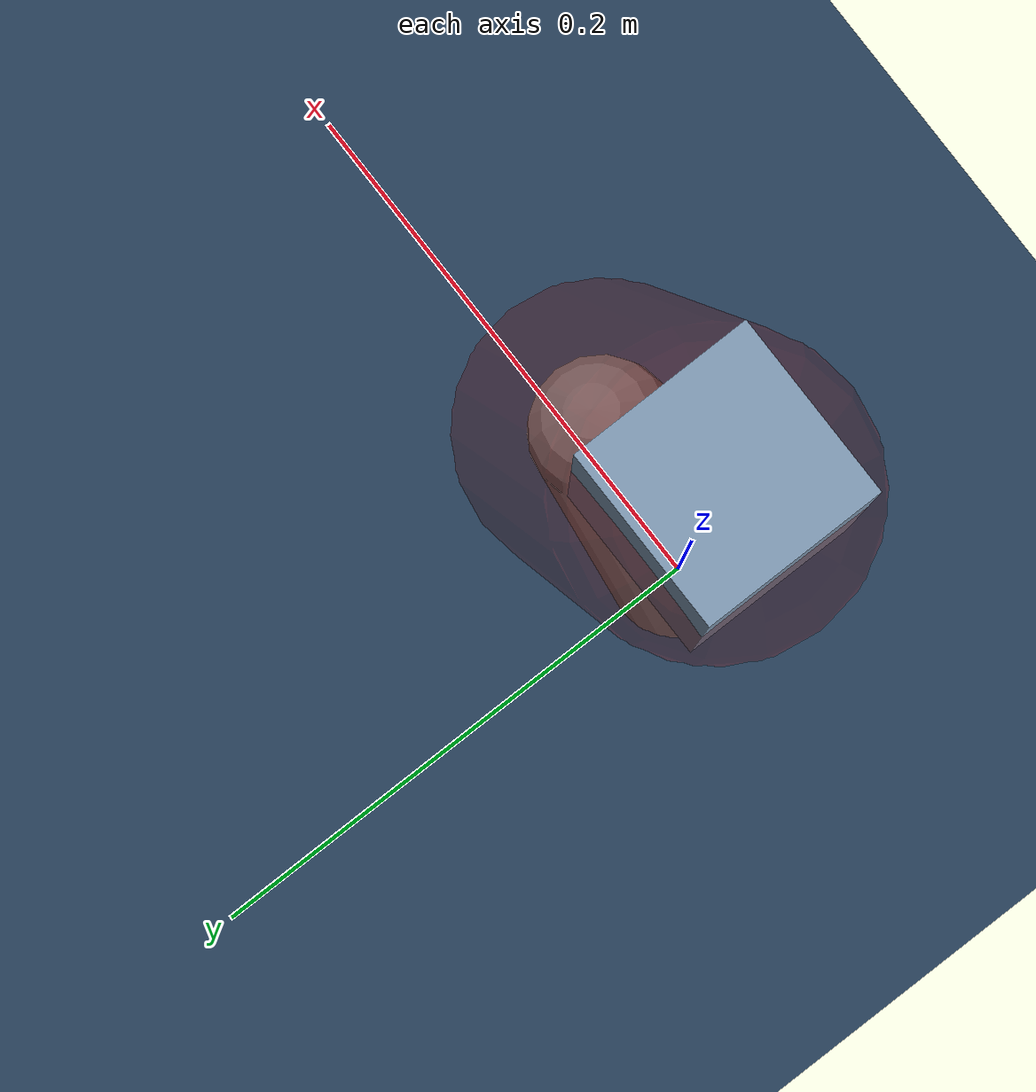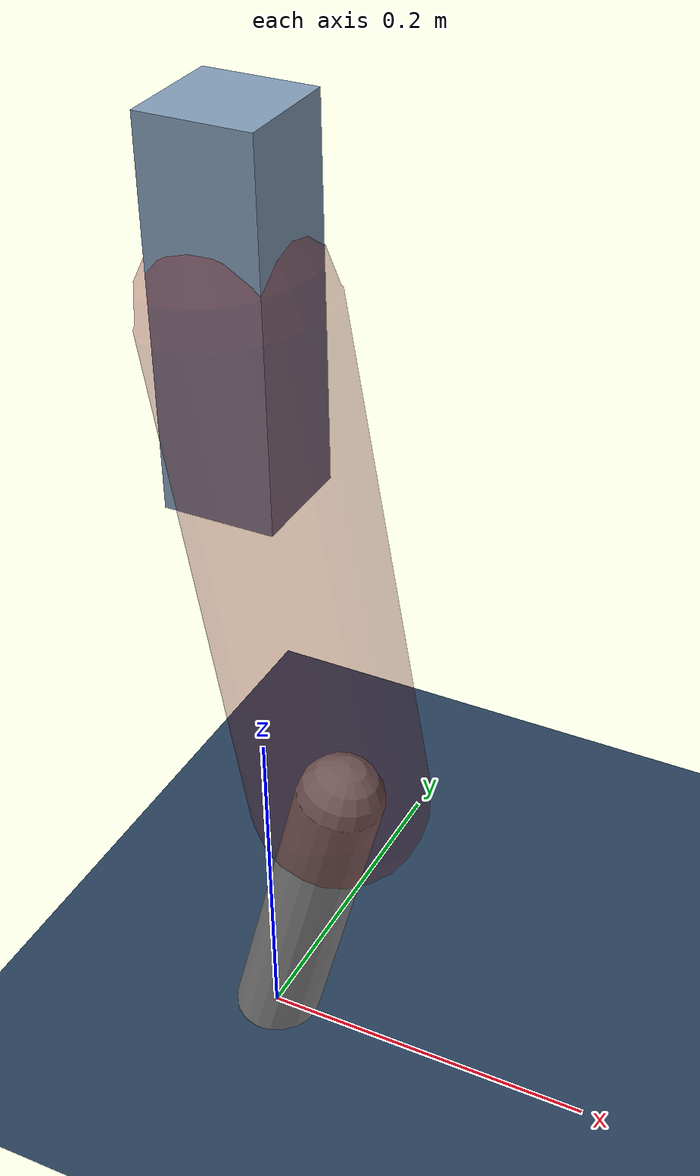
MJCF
<mujoco model="Hopper2D">
	<compiler inertiafromgeom="true" angle="radian" />
	<option timestep="0.001" integrator="implicit" cone="elliptic" solver="Newton" tolerance="1e-10" />

	<default>
		<geom contype="1" conaffinity="1" condim="3" friction="2 0.005 0.0001" solref="0.005 1" />
		<joint limited="true" damping="0.1" />
	</default>

	<asset>
		<texture name="skybox" type="skybox" builtin="gradient" rgb1=".4 .6 .8" rgb2="0 0 0" width="800" height="800" />
		<texture name="grid" type="2d" builtin="checker" rgb1=".1 .2 .3" rgb2=".2 .3 .4" width="300" height="300" mark="edge" markrgb=".2 .3 .4" />
		<material name="ground" texture="grid" texrepeat="1 1" texuniform="true" reflectance="0.1" />
		<material name="leg" rgba="0.5 0.6 0.7 1" />
	</asset>

	<worldbody>

		<geom name="floor" type="plane" size="5 5 0.25" material="ground" />

		<light directional="false" diffuse="0.8 0.8 0.8" specular="0.3 0.3 0.3" pos="0 0 2" dir="0 0 -1" />
		<light mode="targetbodycom" target="base" directional="false" diffuse="0.8 0.8 0.8" specular="0.3 0.3 0.3" pos="0 0 2" dir="0 0 -1" />

		<camera name="fixed" pos="0 -2 1" xyaxes="1 0 0 0 0 1" />
		<camera name="tracking" mode="trackcom" pos="0 -3 1" />

		<body name="root" pos="0 0 0.4648674138121097">
			<joint name="slide_x" type="slide" axis="1 0 0" range="-100 100" />
			<joint name="slide_z" type="slide" axis="0 0 1" range="0 10" />

			<body name="base" pos="0 0 0">
				<geom name="torso" type="box" size="0.03 0.03 0.1" mass="1.9849999999999999" material="leg" />

				<body name="link1" pos="0 0 0" euler="0 1.4048704246562254 0">
					<joint type="hinge" axis="0 -1 0" pos="0 0 0" name="hinge1" limited="true" range="-3.14 3.14" stiffness="0" damping="0.1" />
					<geom name="thigh" type="capsule" fromto="0 0 0 0.28677453727265634 0 0" size="0.05" rgba="0.5 0 0 0.3" mass="0.9531912506361722" />

					<body name="link2" pos="0.28677453727265634 0 0" euler="0 0.42048485624745874 0">
						<joint type="hinge" axis="0 -1 0" pos="0 0 0" name="hinge2" limited="true" range="-3.14 3.14" stiffness="0" damping="0.1" />
						<geom name="shank" type="capsule" fromto="0 0 0 0.1880928765394534 0 0" size="0.025" mass="0.39078358888550807" />

					</body>
				</body>
			</body>
		</body>
	</worldbody>

	<actuator>
		<motor name="torque1" joint="hinge1" ctrlrange="-72.96501461328639 72.96501461328639" ctrllimited="true" gear="1" />
		<motor name="torque2" joint="hinge2" ctrlrange="-48.02607374841617 48.02607374841617" ctrllimited="true" gear="1" />
	</actuator>
</mujoco>
